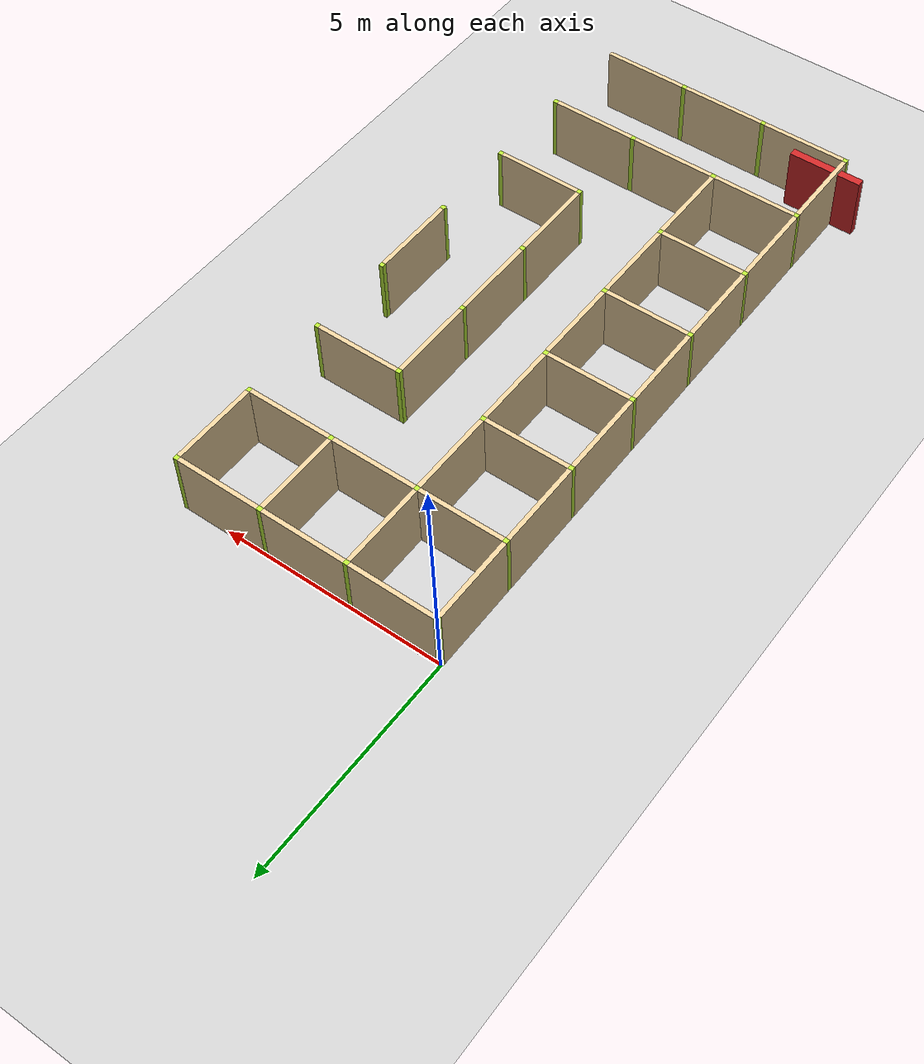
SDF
<sdf version="1.4">
 <world name="maze_world">
  <model name="ground">
   <static>true</static>
   <link name="ground_link">
    <collision name="collision1"><geometry><plane><normal>0 0 1</normal></plane></geometry></collision>
    <visual name="visual1"><geometry><plane><normal>0 0 1</normal><size>100 100</size></plane></geometry></visual>
   </link>
  </model>
  <model name="goal_marker">
   <pose>0.1 -14 0.5 0 0 0</pose>
   <scale>1 1 1</scale>
   <link name="link">
    <pose>0.1 -14 0.471439 0 0 0</pose>
    <velocity>0 0 0 0 -0 0</velocity>
    <acceleration>0 0 0 0 -0 0</acceleration>
    <wrench>0 0 0 0 -0 0</wrench>
   </link>
  </model>
  <model name="Untitled">
   <link name="Wall_0_0_h">
    <collision name="Wall_0_Collision">
     <geometry><box><size>1.9 0.1 1.5</size></box></geometry>
     <pose>0 0 0.75 0 -0 0</pose>
    </collision>
    <visual name="Wall_0_Visual">
     <pose>0 0 0.75 0 -0 0</pose>
     <geometry><box><size>1.9 0.1 1.5</size></box></geometry>
     <material>
      <script><uri>file://media/materials/scripts/gazebo.material</uri><name>Gazebo/Grey</name></script>
      <ambient>0.921569 0.807843 0.615686 1</ambient>
     </material>
     <meta><layer>0</layer></meta>
    </visual>
    <pose>1.0 0 0 0 -0 0</pose>
   </link>
   <link name="Wall_0_0_v">
    <collision name="Wall_0_Collision">
     <geometry><box><size>1.9 0.1 1.5</size></box></geometry>
     <pose>0 0 0.75 0 -0 0</pose>
    </collision>
    <visual name="Wall_0_Visual">
     <pose>0 0 0.75 0 -0 0</pose>
     <geometry><box><size>1.9 0.1 1.5</size></box></geometry>
     <material>
      <script><uri>file://media/materials/scripts/gazebo.material</uri><name>Gazebo/Grey</name></script>
      <ambient>0.921569 0.807843 0.615686 1</ambient>
     </material>
     <meta><layer>0</layer></meta>
    </visual>
    <pose>0 -1.0 0 0 -0 1.5708</pose>
   </link>
   <link name="Joint_0_0">
    <collision name="Wall_2_Collision">
     <geometry><box><size>0.1 0.1 1.5</size></box></geometry>
     <pose>0 0 0.75 0 -0 0</pose>
    </collision>
    <visual name="Wall_2_Visual">
     <pose>0 0 0.75 0 -0 0</pose>
     <geometry><box><size>0.1 0.1 1.5</size></box></geometry>
     <material>
      <script><uri>file://media/materials/scripts/gazebo.material</uri><name>Gazebo/Grey</name></script>
      <ambient>0.721569 0.907843 0.215686 1</ambient>
     </material>
     <meta><layer>0</layer></meta>
    </visual>
   </link>
   <link name="Wall_1_0_h">
    <collision name="Wall_0_Collision">
     <geometry><box><size>1.9 0.1 1.5</size></box></geometry>
     <pose>0 0 0.75 0 -0 0</pose>
    </collision>
    <visual name="Wall_0_Visual">
     <pose>0 0 0.75 0 -0 0</pose>
     <geometry><box><size>1.9 0.1 1.5</size></box></geometry>
     <material>
      <script><uri>file://media/materials/scripts/gazebo.material</uri><name>Gazebo/Grey</name></script>
      <ambient>0.921569 0.807843 0.615686 1</ambient>
     </material>
     <meta><layer>0</layer></meta>
    </visual>
    <pose>3.0 0 0 0 -0 0</pose>
   </link>
   <link name="Wall_1_0_v">
    <collision name="Wall_0_Collision">
     <geometry><box><size>1.9 0.1 1.5</size></box></geometry>
     <pose>0 0 0.75 0 -0 0</pose>
    </collision>
    <visual name="Wall_0_Visual">
     <pose>0 0 0.75 0 -0 0</pose>
     <geometry><box><size>1.9 0.1 1.5</size></box></geometry>
     <material>
      <script><uri>file://media/materials/scripts/gazebo.material</uri><name>Gazebo/Grey</name></script>
      <ambient>0.921569 0.807843 0.615686 1</ambient>
     </material>
     <meta><layer>0</layer></meta>
    </visual>
    <pose>2 -1.0 0 0 -0 1.5708</pose>
   </link>
   <link name="Joint_2_0">
    <collision name="Wall_2_Collision">
     <geometry><box><size>0.1 0.1 1.5</size></box></geometry>
     <pose>0 0 0.75 0 -0 0</pose>
    </collision>
    <visual name="Wall_2_Visual">
     <pose>0 0 0.75 0 -0 0</pose>
     <geometry><box><size>0.1 0.1 1.5</size></box></geometry>
     <material>
      <script><uri>file://media/materials/scripts/gazebo.material</uri><name>Gazebo/Grey</name></script>
      <ambient>0.721569 0.907843 0.215686 1</ambient>
     </material>
     <meta><layer>0</layer></meta>
    </visual>
    <pose>2 0 0 0 -0 0</pose>
   </link>
   <link name="Wall_2_0_h">
    <collision name="Wall_0_Collision">
     <geometry><box><size>1.9 0.1 1.5</size></box></geometry>
     <pose>0 0 0.75 0 -0 0</pose>
    </collision>
    <visual name="Wall_0_Visual">
     <pose>0 0 0.75 0 -0 0</pose>
     <geometry><box><size>1.9 0.1 1.5</size></box></geometry>
     <material>
      <script><uri>file://media/materials/scripts/gazebo.material</uri><name>Gazebo/Grey</name></script>
      <ambient>0.921569 0.807843 0.615686 1</ambient>
     </material>
     <meta><layer>0</layer></meta>
    </visual>
    <pose>5.0 0 0 0 -0 0</pose>
   </link>
   <link name="Wall_2_0_v">
    <collision name="Wall_0_Collision">
     <geometry><box><size>1.9 0.1 1.5</size></box></geometry>
     <pose>0 0 0.75 0 -0 0</pose>
    </collision>
    <visual name="Wall_0_Visual">
     <pose>0 0 0.75 0 -0 0</pose>
     <geometry><box><size>1.9 0.1 1.5</size></box></geometry>
     <material>
      <script><uri>file://media/materials/scripts/gazebo.material</uri><name>Gazebo/Grey</name></script>
      <ambient>0.921569 0.807843 0.615686 1</ambient>
     </material>
     <meta><layer>0</layer></meta>
    </visual>
    <pose>4 -1.0 0 0 -0 1.5708</pose>
   </link>
   <link name="Joint_4_0">
    <collision name="Wall_2_Collision">
     <geometry><box><size>0.1 0.1 1.5</size></box></geometry>
     <pose>0 0 0.75 0 -0 0</pose>
    </collision>
    <visual name="Wall_2_Visual">
     <pose>0 0 0.75 0 -0 0</pose>
     <geometry><box><size>0.1 0.1 1.5</size></box></geometry>
     <material>
      <script><uri>file://media/materials/scripts/gazebo.material</uri><name>Gazebo/Grey</name></script>
      <ambient>0.721569 0.907843 0.215686 1</ambient>
     </material>
     <meta><layer>0</layer></meta>
    </visual>
    <pose>4 0 0 0 -0 0</pose>
   </link>
   <link name="Wall_3_0_v">
    <collision name="Wall_0_Collision">
     <geometry><box><size>1.9 0.1 1.5</size></box></geometry>
     <pose>0 0 0.75 0 -0 0</pose>
    </collision>
    <visual name="Wall_0_Visual">
     <pose>0 0 0.75 0 -0 0</pose>
     <geometry><box><size>1.9 0.1 1.5</size></box></geometry>
     <material>
      <script><uri>file://media/materials/scripts/gazebo.material</uri><name>Gazebo/Grey</name></script>
      <ambient>0.921569 0.807843 0.615686 1</ambient>
     </material>
     <meta><layer>0</layer></meta>
    </visual>
    <pose>6 -1.0 0 0 -0 1.5708</pose>
   </link>
   <link name="Joint_6_0">
    <collision name="Wall_2_Collision">
     <geometry><box><size>0.1 0.1 1.5</size></box></geometry>
     <pose>0 0 0.75 0 -0 0</pose>
    </collision>
    <visual name="Wall_2_Visual">
     <pose>0 0 0.75 0 -0 0</pose>
     <geometry><box><size>0.1 0.1 1.5</size></box></geometry>
     <material>
      <script><uri>file://media/materials/scripts/gazebo.material</uri><name>Gazebo/Grey</name></script>
      <ambient>0.721569 0.907843 0.215686 1</ambient>
     </material>
     <meta><layer>0</layer></meta>
    </visual>
    <pose>6 0 0 0 -0 0</pose>
   </link>
   <link name="Wall_0_1_h">
    <collision name="Wall_0_Collision">
     <geometry><box><size>1.9 0.1 1.5</size></box></geometry>
     <pose>0 0 0.75 0 -0 0</pose>
    </collision>
    <visual name="Wall_0_Visual">
     <pose>0 0 0.75 0 -0 0</pose>
     <geometry><box><size>1.9 0.1 1.5</size></box></geometry>
     <material>
      <script><uri>file://media/materials/scripts/gazebo.material</uri><name>Gazebo/Grey</name></script>
      <ambient>0.921569 0.807843 0.615686 1</ambient>
     </material>
     <meta><layer>0</layer></meta>
    </visual>
    <pose>1.0 -2 0 0 -0 0</pose>
   </link>
   <link name="Wall_0_1_v">
    <collision name="Wall_0_Collision">
     <geometry><box><size>1.9 0.1 1.5</size></box></geometry>
     <pose>0 0 0.75 0 -0 0</pose>
    </collision>
    <visual name="Wall_0_Visual">
     <pose>0 0 0.75 0 -0 0</pose>
     <geometry><box><size>1.9 0.1 1.5</size></box></geometry>
     <material>
      <script><uri>file://media/materials/scripts/gazebo.material</uri><name>Gazebo/Grey</name></script>
      <ambient>0.921569 0.807843 0.615686 1</ambient>
     </material>
     <meta><layer>0</layer></meta>
    </visual>
    <pose>0 -3.0 0 0 -0 1.5708</pose>
   </link>
   <link name="Joint_0_-2">
    <collision name="Wall_2_Collision">
     <geometry><box><size>0.1 0.1 1.5</size></box></geometry>
     <pose>0 0 0.75 0 -0 0</pose>
    </collision>
    <visual name="Wall_2_Visual">
     <pose>0 0 0.75 0 -0 0</pose>
     <geometry><box><size>0.1 0.1 1.5</size></box></geometry>
     <material>
      <script><uri>file://media/materials/scripts/gazebo.material</uri><name>Gazebo/Grey</name></script>
      <ambient>0.721569 0.907843 0.215686 1</ambient>
     </material>
     <meta><layer>0</layer></meta>
    </visual>
    <pose>0 -2 0 0 -0 0</pose>
   </link>
   <link name="Wall_1_1_h">
    <collision name="Wall_0_Collision">
     <geometry><box><size>1.9 0.1 1.5</size></box></geometry>
     <pose>0 0 0.75 0 -0 0</pose>
    </collision>
    <visual name="Wall_0_Visual">
     <pose>0 0 0.75 0 -0 0</pose>
     <geometry><box><size>1.9 0.1 1.5</size></box></geometry>
     <material>
      <script><uri>file://media/materials/scripts/gazebo.material</uri><name>Gazebo/Grey</name></script>
      <ambient>0.921569 0.807843 0.615686 1</ambient>
     </material>
     <meta><layer>0</layer></meta>
    </visual>
    <pose>3.0 -2 0 0 -0 0</pose>
   </link>
   <link name="Wall_1_1_v">
    <collision name="Wall_0_Collision">
     <geometry><box><size>1.9 0.1 1.5</size></box></geometry>
     <pose>0 0 0.75 0 -0 0</pose>
    </collision>
    <visual name="Wall_0_Visual">
     <pose>0 0 0.75 0 -0 0</pose>
     <geometry><box><size>1.9 0.1 1.5</size></box></geometry>
     <material>
      <script><uri>file://media/materials/scripts/gazebo.material</uri><name>Gazebo/Grey</name></script>
      <ambient>0.921569 0.807843 0.615686 1</ambient>
     </material>
     <meta><layer>0</layer></meta>
    </visual>
    <pose>2 -3.0 0 0 -0 1.5708</pose>
   </link>
   <link name="Joint_2_-2">
    <collision name="Wall_2_Collision">
     <geometry><box><size>0.1 0.1 1.5</size></box></geometry>
     <pose>0 0 0.75 0 -0 0</pose>
    </collision>
    <visual name="Wall_2_Visual">
     <pose>0 0 0.75 0 -0 0</pose>
     <geometry><box><size>0.1 0.1 1.5</size></box></geometry>
     <material>
      <script><uri>file://media/materials/scripts/gazebo.material</uri><name>Gazebo/Grey</name></script>
      <ambient>0.721569 0.907843 0.215686 1</ambient>
     </material>
     <meta><layer>0</layer></meta>
    </visual>
    <pose>2 -2 0 0 -0 0</pose>
   </link>
   <link name="Wall_2_1_h">
    <collision name="Wall_0_Collision">
     <geometry><box><size>1.9 0.1 1.5</size></box></geometry>
     <pose>0 0 0.75 0 -0 0</pose>
    </collision>
    <visual name="Wall_0_Visual">
     <pose>0 0 0.75 0 -0 0</pose>
     <geometry><box><size>1.9 0.1 1.5</size></box></geometry>
     <material>
      <script><uri>file://media/materials/scripts/gazebo.material</uri><name>Gazebo/Grey</name></script>
      <ambient>0.921569 0.807843 0.615686 1</ambient>
     </material>
     <meta><layer>0</layer></meta>
    </visual>
    <pose>5.0 -2 0 0 -0 0</pose>
   </link>
   <link name="Joint_4_-2">
    <collision name="Wall_2_Collision">
     <geometry><box><size>0.1 0.1 1.5</size></box></geometry>
     <pose>0 0 0.75 0 -0 0</pose>
    </collision>
    <visual name="Wall_2_Visual">
     <pose>0 0 0.75 0 -0 0</pose>
     <geometry><box><size>0.1 0.1 1.5</size></box></geometry>
     <material>
      <script><uri>file://media/materials/scripts/gazebo.material</uri><name>Gazebo/Grey</name></script>
      <ambient>0.721569 0.907843 0.215686 1</ambient>
     </material>
     <meta><layer>0</layer></meta>
    </visual>
    <pose>4 -2 0 0 -0 0</pose>
   </link>
   <link name="Joint_6_-2">
    <collision name="Wall_2_Collision">
     <geometry><box><size>0.1 0.1 1.5</size></box></geometry>
     <pose>0 0 0.75 0 -0 0</pose>
    </collision>
    <visual name="Wall_2_Visual">
     <pose>0 0 0.75 0 -0 0</pose>
     <geometry><box><size>0.1 0.1 1.5</size></box></geometry>
     <material>
      <script><uri>file://media/materials/scripts/gazebo.material</uri><name>Gazebo/Grey</name></script>
      <ambient>0.721569 0.907843 0.215686 1</ambient>
     </material>
     <meta><layer>0</layer></meta>
    </visual>
    <pose>6 -2 0 0 -0 0</pose>
   </link>
   <link name="Wall_0_2_h">
    <collision name="Wall_0_Collision">
     <geometry><box><size>1.9 0.1 1.5</size></box></geometry>
     <pose>0 0 0.75 0 -0 0</pose>
    </collision>
    <visual name="Wall_0_Visual">
     <pose>0 0 0.75 0 -0 0</pose>
     <geometry><box><size>1.9 0.1 1.5</size></box></geometry>
     <material>
      <script><uri>file://media/materials/scripts/gazebo.material</uri><name>Gazebo/Grey</name></script>
      <ambient>0.921569 0.807843 0.615686 1</ambient>
     </material>
     <meta><layer>0</layer></meta>
    </visual>
    <pose>1.0 -4 0 0 -0 0</pose>
   </link>
   <link name="Wall_0_2_v">
    <collision name="Wall_0_Collision">
     <geometry><box><size>1.9 0.1 1.5</size></box></geometry>
     <pose>0 0 0.75 0 -0 0</pose>
    </collision>
    <visual name="Wall_0_Visual">
     <pose>0 0 0.75 0 -0 0</pose>
     <geometry><box><size>1.9 0.1 1.5</size></box></geometry>
     <material>
      <script><uri>file://media/materials/scripts/gazebo.material</uri><name>Gazebo/Grey</name></script>
      <ambient>0.921569 0.807843 0.615686 1</ambient>
     </material>
     <meta><layer>0</layer></meta>
    </visual>
    <pose>0 -5.0 0 0 -0 1.5708</pose>
   </link>
   <link name="Joint_0_-4">
    <collision name="Wall_2_Collision">
     <geometry><box><size>0.1 0.1 1.5</size></box></geometry>
     <pose>0 0 0.75 0 -0 0</pose>
    </collision>
    <visual name="Wall_2_Visual">
     <pose>0 0 0.75 0 -0 0</pose>
     <geometry><box><size>0.1 0.1 1.5</size></box></geometry>
     <material>
      <script><uri>file://media/materials/scripts/gazebo.material</uri><name>Gazebo/Grey</name></script>
      <ambient>0.721569 0.907843 0.215686 1</ambient>
     </material>
     <meta><layer>0</layer></meta>
    </visual>
    <pose>0 -4 0 0 -0 0</pose>
   </link>
   <link name="Wall_1_2_v">
    <collision name="Wall_0_Collision">
     <geometry><box><size>1.9 0.1 1.5</size></box></geometry>
     <pose>0 0 0.75 0 -0 0</pose>
    </collision>
    <visual name="Wall_0_Visual">
     <pose>0 0 0.75 0 -0 0</pose>
     <geometry><box><size>1.9 0.1 1.5</size></box></geometry>
     <material>
      <script><uri>file://media/materials/scripts/gazebo.material</uri><name>Gazebo/Grey</name></script>
      <ambient>0.921569 0.807843 0.615686 1</ambient>
     </material>
     <meta><layer>0</layer></meta>
    </visual>
    <pose>2 -5.0 0 0 -0 1.5708</pose>
   </link>
   <link name="Joint_2_-4">
    <collision name="Wall_2_Collision">
     <geometry><box><size>0.1 0.1 1.5</size></box></geometry>
     <pose>0 0 0.75 0 -0 0</pose>
    </collision>
    <visual name="Wall_2_Visual">
     <pose>0 0 0.75 0 -0 0</pose>
     <geometry><box><size>0.1 0.1 1.5</size></box></geometry>
     <material>
      <script><uri>file://media/materials/scripts/gazebo.material</uri><name>Gazebo/Grey</name></script>
      <ambient>0.721569 0.907843 0.215686 1</ambient>
     </material>
     <meta><layer>0</layer></meta>
    </visual>
    <pose>2 -4 0 0 -0 0</pose>
   </link>
   <link name="Wall_2_2_h">
    <collision name="Wall_0_Collision">
     <geometry><box><size>1.9 0.1 1.5</size></box></geometry>
     <pose>0 0 0.75 0 -0 0</pose>
    </collision>
    <visual name="Wall_0_Visual">
     <pose>0 0 0.75 0 -0 0</pose>
     <geometry><box><size>1.9 0.1 1.5</size></box></geometry>
     <material>
      <script><uri>file://media/materials/scripts/gazebo.material</uri><name>Gazebo/Grey</name></script>
      <ambient>0.921569 0.807843 0.615686 1</ambient>
     </material>
     <meta><layer>0</layer></meta>
    </visual>
    <pose>5.0 -4 0 0 -0 0</pose>
   </link>
   <link name="Wall_2_2_v">
    <collision name="Wall_0_Collision">
     <geometry><box><size>1.9 0.1 1.5</size></box></geometry>
     <pose>0 0 0.75 0 -0 0</pose>
    </collision>
    <visual name="Wall_0_Visual">
     <pose>0 0 0.75 0 -0 0</pose>
     <geometry><box><size>1.9 0.1 1.5</size></box></geometry>
     <material>
      <script><uri>file://media/materials/scripts/gazebo.material</uri><name>Gazebo/Grey</name></script>
      <ambient>0.921569 0.807843 0.615686 1</ambient>
     </material>
     <meta><layer>0</layer></meta>
    </visual>
    <pose>4 -5.0 0 0 -0 1.5708</pose>
   </link>
   <link name="Joint_4_-4">
    <collision name="Wall_2_Collision">
     <geometry><box><size>0.1 0.1 1.5</size></box></geometry>
     <pose>0 0 0.75 0 -0 0</pose>
    </collision>
    <visual name="Wall_2_Visual">
     <pose>0 0 0.75 0 -0 0</pose>
     <geometry><box><size>0.1 0.1 1.5</size></box></geometry>
     <material>
      <script><uri>file://media/materials/scripts/gazebo.material</uri><name>Gazebo/Grey</name></script>
      <ambient>0.721569 0.907843 0.215686 1</ambient>
     </material>
     <meta><layer>0</layer></meta>
    </visual>
    <pose>4 -4 0 0 -0 0</pose>
   </link>
   <link name="Joint_6_-4">
    <collision name="Wall_2_Collision">
     <geometry><box><size>0.1 0.1 1.5</size></box></geometry>
     <pose>0 0 0.75 0 -0 0</pose>
    </collision>
    <visual name="Wall_2_Visual">
     <pose>0 0 0.75 0 -0 0</pose>
     <geometry><box><size>0.1 0.1 1.5</size></box></geometry>
     <material>
      <script><uri>file://media/materials/scripts/gazebo.material</uri><name>Gazebo/Grey</name></script>
      <ambient>0.721569 0.907843 0.215686 1</ambient>
     </material>
     <meta><layer>0</layer></meta>
    </visual>
    <pose>6 -4 0 0 -0 0</pose>
   </link>
   <link name="Wall_0_3_h">
    <collision name="Wall_0_Collision">
     <geometry><box><size>1.9 0.1 1.5</size></box></geometry>
     <pose>0 0 0.75 0 -0 0</pose>
    </collision>
    <visual name="Wall_0_Visual">
     <pose>0 0 0.75 0 -0 0</pose>
     <geometry><box><size>1.9 0.1 1.5</size></box></geometry>
     <material>
      <script><uri>file://media/materials/scripts/gazebo.material</uri><name>Gazebo/Grey</name></script>
      <ambient>0.921569 0.807843 0.615686 1</ambient>
     </material>
     <meta><layer>0</layer></meta>
    </visual>
    <pose>1.0 -6 0 0 -0 0</pose>
   </link>
   <link name="Wall_0_3_v">
    <collision name="Wall_0_Collision">
     <geometry><box><size>1.9 0.1 1.5</size></box></geometry>
     <pose>0 0 0.75 0 -0 0</pose>
    </collision>
    <visual name="Wall_0_Visual">
     <pose>0 0 0.75 0 -0 0</pose>
     <geometry><box><size>1.9 0.1 1.5</size></box></geometry>
     <material>
      <script><uri>file://media/materials/scripts/gazebo.material</uri><name>Gazebo/Grey</name></script>
      <ambient>0.921569 0.807843 0.615686 1</ambient>
     </material>
     <meta><layer>0</layer></meta>
    </visual>
    <pose>0 -7.0 0 0 -0 1.5708</pose>
   </link>
   <link name="Joint_0_-6">
    <collision name="Wall_2_Collision">
     <geometry><box><size>0.1 0.1 1.5</size></box></geometry>
     <pose>0 0 0.75 0 -0 0</pose>
    </collision>
    <visual name="Wall_2_Visual">
     <pose>0 0 0.75 0 -0 0</pose>
     <geometry><box><size>0.1 0.1 1.5</size></box></geometry>
     <material>
      <script><uri>file://media/materials/scripts/gazebo.material</uri><name>Gazebo/Grey</name></script>
      <ambient>0.721569 0.907843 0.215686 1</ambient>
     </material>
     <meta><layer>0</layer></meta>
    </visual>
    <pose>0 -6 0 0 -0 0</pose>
   </link>
   <link name="Wall_1_3_v">
    <collision name="Wall_0_Collision">
     <geometry><box><size>1.9 0.1 1.5</size></box></geometry>
     <pose>0 0 0.75 0 -0 0</pose>
    </collision>
    <visual name="Wall_0_Visual">
     <pose>0 0 0.75 0 -0 0</pose>
     <geometry><box><size>1.9 0.1 1.5</size></box></geometry>
     <material>
      <script><uri>file://media/materials/scripts/gazebo.material</uri><name>Gazebo/Grey</name></script>
      <ambient>0.921569 0.807843 0.615686 1</ambient>
     </material>
     <meta><layer>0</layer></meta>
    </visual>
    <pose>2 -7.0 0 0 -0 1.5708</pose>
   </link>
   <link name="Joint_2_-6">
    <collision name="Wall_2_Collision">
     <geometry><box><size>0.1 0.1 1.5</size></box></geometry>
     <pose>0 0 0.75 0 -0 0</pose>
    </collision>
    <visual name="Wall_2_Visual">
     <pose>0 0 0.75 0 -0 0</pose>
     <geometry><box><size>0.1 0.1 1.5</size></box></geometry>
     <material>
      <script><uri>file://media/materials/scripts/gazebo.material</uri><name>Gazebo/Grey</name></script>
      <ambient>0.721569 0.907843 0.215686 1</ambient>
     </material>
     <meta><layer>0</layer></meta>
    </visual>
    <pose>2 -6 0 0 -0 0</pose>
   </link>
   <link name="Wall_2_3_v">
    <collision name="Wall_0_Collision">
     <geometry><box><size>1.9 0.1 1.5</size></box></geometry>
     <pose>0 0 0.75 0 -0 0</pose>
    </collision>
    <visual name="Wall_0_Visual">
     <pose>0 0 0.75 0 -0 0</pose>
     <geometry><box><size>1.9 0.1 1.5</size></box></geometry>
     <material>
      <script><uri>file://media/materials/scripts/gazebo.material</uri><name>Gazebo/Grey</name></script>
      <ambient>0.921569 0.807843 0.615686 1</ambient>
     </material>
     <meta><layer>0</layer></meta>
    </visual>
    <pose>4 -7.0 0 0 -0 1.5708</pose>
   </link>
   <link name="Joint_4_-6">
    <collision name="Wall_2_Collision">
     <geometry><box><size>0.1 0.1 1.5</size></box></geometry>
     <pose>0 0 0.75 0 -0 0</pose>
    </collision>
    <visual name="Wall_2_Visual">
     <pose>0 0 0.75 0 -0 0</pose>
     <geometry><box><size>0.1 0.1 1.5</size></box></geometry>
     <material>
      <script><uri>file://media/materials/scripts/gazebo.material</uri><name>Gazebo/Grey</name></script>
      <ambient>0.721569 0.907843 0.215686 1</ambient>
     </material>
     <meta><layer>0</layer></meta>
    </visual>
    <pose>4 -6 0 0 -0 0</pose>
   </link>
   <link name="Wall_3_3_v">
    <collision name="Wall_0_Collision">
     <geometry><box><size>1.9 0.1 1.5</size></box></geometry>
     <pose>0 0 0.75 0 -0 0</pose>
    </collision>
    <visual name="Wall_0_Visual">
     <pose>0 0 0.75 0 -0 0</pose>
     <geometry><box><size>1.9 0.1 1.5</size></box></geometry>
     <material>
      <script><uri>file://media/materials/scripts/gazebo.material</uri><name>Gazebo/Grey</name></script>
      <ambient>0.921569 0.807843 0.615686 1</ambient>
     </material>
     <meta><layer>0</layer></meta>
    </visual>
    <pose>6 -7.0 0 0 -0 1.5708</pose>
   </link>
   <link name="Joint_6_-6">
    <collision name="Wall_2_Collision">
     <geometry><box><size>0.1 0.1 1.5</size></box></geometry>
     <pose>0 0 0.75 0 -0 0</pose>
    </collision>
    <visual name="Wall_2_Visual">
     <pose>0 0 0.75 0 -0 0</pose>
     <geometry><box><size>0.1 0.1 1.5</size></box></geometry>
     <material>
      <script><uri>file://media/materials/scripts/gazebo.material</uri><name>Gazebo/Grey</name></script>
      <ambient>0.721569 0.907843 0.215686 1</ambient>
     </material>
     <meta><layer>0</layer></meta>
    </visual>
    <pose>6 -6 0 0 -0 0</pose>
   </link>
   <link name="Wall_0_4_h">
    <collision name="Wall_0_Collision">
     <geometry><box><size>1.9 0.1 1.5</size></box></geometry>
     <pose>0 0 0.75 0 -0 0</pose>
    </collision>
    <visual name="Wall_0_Visual">
     <pose>0 0 0.75 0 -0 0</pose>
     <geometry><box><size>1.9 0.1 1.5</size></box></geometry>
     <material>
      <script><uri>file://media/materials/scripts/gazebo.material</uri><name>Gazebo/Grey</name></script>
      <ambient>0.921569 0.807843 0.615686 1</ambient>
     </material>
     <meta><layer>0</layer></meta>
    </visual>
    <pose>1.0 -8 0 0 -0 0</pose>
   </link>
   <link name="Wall_0_4_v">
    <collision name="Wall_0_Collision">
     <geometry><box><size>1.9 0.1 1.5</size></box></geometry>
     <pose>0 0 0.75 0 -0 0</pose>
    </collision>
    <visual name="Wall_0_Visual">
     <pose>0 0 0.75 0 -0 0</pose>
     <geometry><box><size>1.9 0.1 1.5</size></box></geometry>
     <material>
      <script><uri>file://media/materials/scripts/gazebo.material</uri><name>Gazebo/Grey</name></script>
      <ambient>0.921569 0.807843 0.615686 1</ambient>
     </material>
     <meta><layer>0</layer></meta>
    </visual>
    <pose>0 -9.0 0 0 -0 1.5708</pose>
   </link>
   <link name="Joint_0_-8">
    <collision name="Wall_2_Collision">
     <geometry><box><size>0.1 0.1 1.5</size></box></geometry>
     <pose>0 0 0.75 0 -0 0</pose>
    </collision>
    <visual name="Wall_2_Visual">
     <pose>0 0 0.75 0 -0 0</pose>
     <geometry><box><size>0.1 0.1 1.5</size></box></geometry>
     <material>
      <script><uri>file://media/materials/scripts/gazebo.material</uri><name>Gazebo/Grey</name></script>
      <ambient>0.721569 0.907843 0.215686 1</ambient>
     </material>
     <meta><layer>0</layer></meta>
    </visual>
    <pose>0 -8 0 0 -0 0</pose>
   </link>
   <link name="Wall_1_4_v">
    <collision name="Wall_0_Collision">
     <geometry><box><size>1.9 0.1 1.5</size></box></geometry>
     <pose>0 0 0.75 0 -0 0</pose>
    </collision>
    <visual name="Wall_0_Visual">
     <pose>0 0 0.75 0 -0 0</pose>
     <geometry><box><size>1.9 0.1 1.5</size></box></geometry>
     <material>
      <script><uri>file://media/materials/scripts/gazebo.material</uri><name>Gazebo/Grey</name></script>
      <ambient>0.921569 0.807843 0.615686 1</ambient>
     </material>
     <meta><layer>0</layer></meta>
    </visual>
    <pose>2 -9.0 0 0 -0 1.5708</pose>
   </link>
   <link name="Joint_2_-8">
    <collision name="Wall_2_Collision">
     <geometry><box><size>0.1 0.1 1.5</size></box></geometry>
     <pose>0 0 0.75 0 -0 0</pose>
    </collision>
    <visual name="Wall_2_Visual">
     <pose>0 0 0.75 0 -0 0</pose>
     <geometry><box><size>0.1 0.1 1.5</size></box></geometry>
     <material>
      <script><uri>file://media/materials/scripts/gazebo.material</uri><name>Gazebo/Grey</name></script>
      <ambient>0.721569 0.907843 0.215686 1</ambient>
     </material>
     <meta><layer>0</layer></meta>
    </visual>
    <pose>2 -8 0 0 -0 0</pose>
   </link>
   <link name="Wall_2_4_v">
    <collision name="Wall_0_Collision">
     <geometry><box><size>1.9 0.1 1.5</size></box></geometry>
     <pose>0 0 0.75 0 -0 0</pose>
    </collision>
    <visual name="Wall_0_Visual">
     <pose>0 0 0.75 0 -0 0</pose>
     <geometry><box><size>1.9 0.1 1.5</size></box></geometry>
     <material>
      <script><uri>file://media/materials/scripts/gazebo.material</uri><name>Gazebo/Grey</name></script>
      <ambient>0.921569 0.807843 0.615686 1</ambient>
     </material>
     <meta><layer>0</layer></meta>
    </visual>
    <pose>4 -9.0 0 0 -0 1.5708</pose>
   </link>
   <link name="Joint_4_-8">
    <collision name="Wall_2_Collision">
     <geometry><box><size>0.1 0.1 1.5</size></box></geometry>
     <pose>0 0 0.75 0 -0 0</pose>
    </collision>
    <visual name="Wall_2_Visual">
     <pose>0 0 0.75 0 -0 0</pose>
     <geometry><box><size>0.1 0.1 1.5</size></box></geometry>
     <material>
      <script><uri>file://media/materials/scripts/gazebo.material</uri><name>Gazebo/Grey</name></script>
      <ambient>0.721569 0.907843 0.215686 1</ambient>
     </material>
     <meta><layer>0</layer></meta>
    </visual>
    <pose>4 -8 0 0 -0 0</pose>
   </link>
   <link name="Joint_6_-8">
    <collision name="Wall_2_Collision">
     <geometry><box><size>0.1 0.1 1.5</size></box></geometry>
     <pose>0 0 0.75 0 -0 0</pose>
    </collision>
    <visual name="Wall_2_Visual">
     <pose>0 0 0.75 0 -0 0</pose>
     <geometry><box><size>0.1 0.1 1.5</size></box></geometry>
     <material>
      <script><uri>file://media/materials/scripts/gazebo.material</uri><name>Gazebo/Grey</name></script>
      <ambient>0.721569 0.907843 0.215686 1</ambient>
     </material>
     <meta><layer>0</layer></meta>
    </visual>
    <pose>6 -8 0 0 -0 0</pose>
   </link>
   <link name="Wall_0_5_h">
    <collision name="Wall_0_Collision">
     <geometry><box><size>1.9 0.1 1.5</size></box></geometry>
     <pose>0 0 0.75 0 -0 0</pose>
    </collision>
    <visual name="Wall_0_Visual">
     <pose>0 0 0.75 0 -0 0</pose>
     <geometry><box><size>1.9 0.1 1.5</size></box></geometry>
     <material>
      <script><uri>file://media/materials/scripts/gazebo.material</uri><name>Gazebo/Grey</name></script>
      <ambient>0.921569 0.807843 0.615686 1</ambient>
     </material>
     <meta><layer>0</layer></meta>
    </visual>
    <pose>1.0 -10 0 0 -0 0</pose>
   </link>
   <link name="Wall_0_5_v">
    <collision name="Wall_0_Collision">
     <geometry><box><size>1.9 0.1 1.5</size></box></geometry>
     <pose>0 0 0.75 0 -0 0</pose>
    </collision>
    <visual name="Wall_0_Visual">
     <pose>0 0 0.75 0 -0 0</pose>
     <geometry><box><size>1.9 0.1 1.5</size></box></geometry>
     <material>
      <script><uri>file://media/materials/scripts/gazebo.material</uri><name>Gazebo/Grey</name></script>
      <ambient>0.921569 0.807843 0.615686 1</ambient>
     </material>
     <meta><layer>0</layer></meta>
    </visual>
    <pose>0 -11.0 0 0 -0 1.5708</pose>
   </link>
   <link name="Joint_0_-10">
    <collision name="Wall_2_Collision">
     <geometry><box><size>0.1 0.1 1.5</size></box></geometry>
     <pose>0 0 0.75 0 -0 0</pose>
    </collision>
    <visual name="Wall_2_Visual">
     <pose>0 0 0.75 0 -0 0</pose>
     <geometry><box><size>0.1 0.1 1.5</size></box></geometry>
     <material>
      <script><uri>file://media/materials/scripts/gazebo.material</uri><name>Gazebo/Grey</name></script>
      <ambient>0.721569 0.907843 0.215686 1</ambient>
     </material>
     <meta><layer>0</layer></meta>
    </visual>
    <pose>0 -10 0 0 -0 0</pose>
   </link>
   <link name="Wall_1_5_v">
    <collision name="Wall_0_Collision">
     <geometry><box><size>1.9 0.1 1.5</size></box></geometry>
     <pose>0 0 0.75 0 -0 0</pose>
    </collision>
    <visual name="Wall_0_Visual">
     <pose>0 0 0.75 0 -0 0</pose>
     <geometry><box><size>1.9 0.1 1.5</size></box></geometry>
     <material>
      <script><uri>file://media/materials/scripts/gazebo.material</uri><name>Gazebo/Grey</name></script>
      <ambient>0.921569 0.807843 0.615686 1</ambient>
     </material>
     <meta><layer>0</layer></meta>
    </visual>
    <pose>2 -11.0 0 0 -0 1.5708</pose>
   </link>
   <link name="Joint_2_-10">
    <collision name="Wall_2_Collision">
     <geometry><box><size>0.1 0.1 1.5</size></box></geometry>
     <pose>0 0 0.75 0 -0 0</pose>
    </collision>
    <visual name="Wall_2_Visual">
     <pose>0 0 0.75 0 -0 0</pose>
     <geometry><box><size>0.1 0.1 1.5</size></box></geometry>
     <material>
      <script><uri>file://media/materials/scripts/gazebo.material</uri><name>Gazebo/Grey</name></script>
      <ambient>0.721569 0.907843 0.215686 1</ambient>
     </material>
     <meta><layer>0</layer></meta>
    </visual>
    <pose>2 -10 0 0 -0 0</pose>
   </link>
   <link name="Wall_2_5_h">
    <collision name="Wall_0_Collision">
     <geometry><box><size>1.9 0.1 1.5</size></box></geometry>
     <pose>0 0 0.75 0 -0 0</pose>
    </collision>
    <visual name="Wall_0_Visual">
     <pose>0 0 0.75 0 -0 0</pose>
     <geometry><box><size>1.9 0.1 1.5</size></box></geometry>
     <material>
      <script><uri>file://media/materials/scripts/gazebo.material</uri><name>Gazebo/Grey</name></script>
      <ambient>0.921569 0.807843 0.615686 1</ambient>
     </material>
     <meta><layer>0</layer></meta>
    </visual>
    <pose>5.0 -10 0 0 -0 0</pose>
   </link>
   <link name="Joint_4_-10">
    <collision name="Wall_2_Collision">
     <geometry><box><size>0.1 0.1 1.5</size></box></geometry>
     <pose>0 0 0.75 0 -0 0</pose>
    </collision>
    <visual name="Wall_2_Visual">
     <pose>0 0 0.75 0 -0 0</pose>
     <geometry><box><size>0.1 0.1 1.5</size></box></geometry>
     <material>
      <script><uri>file://media/materials/scripts/gazebo.material</uri><name>Gazebo/Grey</name></script>
      <ambient>0.721569 0.907843 0.215686 1</ambient>
     </material>
     <meta><layer>0</layer></meta>
    </visual>
    <pose>4 -10 0 0 -0 0</pose>
   </link>
   <link name="Joint_6_-10">
    <collision name="Wall_2_Collision">
     <geometry><box><size>0.1 0.1 1.5</size></box></geometry>
     <pose>0 0 0.75 0 -0 0</pose>
    </collision>
    <visual name="Wall_2_Visual">
     <pose>0 0 0.75 0 -0 0</pose>
     <geometry><box><size>0.1 0.1 1.5</size></box></geometry>
     <material>
      <script><uri>file://media/materials/scripts/gazebo.material</uri><name>Gazebo/Grey</name></script>
      <ambient>0.721569 0.907843 0.215686 1</ambient>
     </material>
     <meta><layer>0</layer></meta>
    </visual>
    <pose>6 -10 0 0 -0 0</pose>
   </link>
   <link name="Wall_0_6_h">
    <collision name="Wall_0_Collision">
     <geometry><box><size>1.9 0.1 1.5</size></box></geometry>
     <pose>0 0 0.75 0 -0 0</pose>
    </collision>
    <visual name="Wall_0_Visual">
     <pose>0 0 0.75 0 -0 0</pose>
     <geometry><box><size>1.9 0.1 1.5</size></box></geometry>
     <material>
      <script><uri>file://media/materials/scripts/gazebo.material</uri><name>Gazebo/Grey</name></script>
      <ambient>0.921569 0.807843 0.615686 1</ambient>
     </material>
     <meta><layer>0</layer></meta>
    </visual>
    <pose>1.0 -12 0 0 -0 0</pose>
   </link>
   <link name="Wall_0_6_v">
    <collision name="Wall_0_Collision">
     <geometry><box><size>1.9 0.1 1.5</size></box></geometry>
     <pose>0 0 0.75 0 -0 0</pose>
    </collision>
    <visual name="Wall_0_Visual">
     <pose>0 0 0.75 0 -0 0</pose>
     <geometry><box><size>1.9 0.1 1.5</size></box></geometry>
     <material>
      <script><uri>file://media/materials/scripts/gazebo.material</uri><name>Gazebo/Grey</name></script>
      <ambient>0.921569 0.807843 0.615686 1</ambient>
     </material>
     <meta><layer>0</layer></meta>
    </visual>
    <pose>0 -13.0 0 0 -0 1.5708</pose>
   </link>
   <link name="Joint_0_-12">
    <collision name="Wall_2_Collision">
     <geometry><box><size>0.1 0.1 1.5</size></box></geometry>
     <pose>0 0 0.75 0 -0 0</pose>
    </collision>
    <visual name="Wall_2_Visual">
     <pose>0 0 0.75 0 -0 0</pose>
     <geometry><box><size>0.1 0.1 1.5</size></box></geometry>
     <material>
      <script><uri>file://media/materials/scripts/gazebo.material</uri><name>Gazebo/Grey</name></script>
      <ambient>0.721569 0.907843 0.215686 1</ambient>
     </material>
     <meta><layer>0</layer></meta>
    </visual>
    <pose>0 -12 0 0 -0 0</pose>
   </link>
   <link name="Wall_0_7_h">
    <collision name="Wall_0_Collision">
     <geometry><box><size>1.9 0.1 1.5</size></box></geometry>
     <pose>0 0 0.75 0 -0 0</pose>
    </collision>
    <visual name="Wall_0_Visual">
     <pose>0 0 0.75 0 -0 0</pose>
     <geometry><box><size>1.9 0.1 1.5</size></box></geometry>
     <material>
      <script><uri>file://media/materials/scripts/gazebo.material</uri><name>Gazebo/Grey</name></script>
      <ambient>0.921569 0.807843 0.615686 1</ambient>
     </material>
     <meta><layer>0</layer></meta>
    </visual>
    <pose>1.0 -14 0 0 -0 0</pose>
   </link>
   <link name="Joint_0_-14">
    <collision name="Wall_2_Collision">
     <geometry><box><size>0.1 0.1 1.5</size></box></geometry>
     <pose>0 0 0.75 0 -0 0</pose>
    </collision>
    <visual name="Wall_2_Visual">
     <pose>0 0 0.75 0 -0 0</pose>
     <geometry><box><size>0.1 0.1 1.5</size></box></geometry>
     <material>
      <script><uri>file://media/materials/scripts/gazebo.material</uri><name>Gazebo/Grey</name></script>
      <ambient>0.721569 0.907843 0.215686 1</ambient>
     </material>
     <meta><layer>0</layer></meta>
    </visual>
    <pose>0 -14 0 0 -0 0</pose>
   </link>
   <link name="Wall_1_6_h">
    <collision name="Wall_0_Collision">
     <geometry><box><size>1.9 0.1 1.5</size></box></geometry>
     <pose>0 0 0.75 0 -0 0</pose>
    </collision>
    <visual name="Wall_0_Visual">
     <pose>0 0 0.75 0 -0 0</pose>
     <geometry><box><size>1.9 0.1 1.5</size></box></geometry>
     <material>
      <script><uri>file://media/materials/scripts/gazebo.material</uri><name>Gazebo/Grey</name></script>
      <ambient>0.921569 0.807843 0.615686 1</ambient>
     </material>
     <meta><layer>0</layer></meta>
    </visual>
    <pose>3.0 -12 0 0 -0 0</pose>
   </link>
   <link name="Joint_2_-12">
    <collision name="Wall_2_Collision">
     <geometry><box><size>0.1 0.1 1.5</size></box></geometry>
     <pose>0 0 0.75 0 -0 0</pose>
    </collision>
    <visual name="Wall_2_Visual">
     <pose>0 0 0.75 0 -0 0</pose>
     <geometry><box><size>0.1 0.1 1.5</size></box></geometry>
     <material>
      <script><uri>file://media/materials/scripts/gazebo.material</uri><name>Gazebo/Grey</name></script>
      <ambient>0.721569 0.907843 0.215686 1</ambient>
     </material>
     <meta><layer>0</layer></meta>
    </visual>
    <pose>2 -12 0 0 -0 0</pose>
   </link>
   <link name="Wall_1_7_h">
    <collision name="Wall_0_Collision">
     <geometry><box><size>1.9 0.1 1.5</size></box></geometry>
     <pose>0 0 0.75 0 -0 0</pose>
    </collision>
    <visual name="Wall_0_Visual">
     <pose>0 0 0.75 0 -0 0</pose>
     <geometry><box><size>1.9 0.1 1.5</size></box></geometry>
     <material>
      <script><uri>file://media/materials/scripts/gazebo.material</uri><name>Gazebo/Grey</name></script>
      <ambient>0.921569 0.807843 0.615686 1</ambient>
     </material>
     <meta><layer>0</layer></meta>
    </visual>
    <pose>3.0 -14 0 0 -0 0</pose>
   </link>
   <link name="Joint_2_-14">
    <collision name="Wall_2_Collision">
     <geometry><box><size>0.1 0.1 1.5</size></box></geometry>
     <pose>0 0 0.75 0 -0 0</pose>
    </collision>
    <visual name="Wall_2_Visual">
     <pose>0 0 0.75 0 -0 0</pose>
     <geometry><box><size>0.1 0.1 1.5</size></box></geometry>
     <material>
      <script><uri>file://media/materials/scripts/gazebo.material</uri><name>Gazebo/Grey</name></script>
      <ambient>0.721569 0.907843 0.215686 1</ambient>
     </material>
     <meta><layer>0</layer></meta>
    </visual>
    <pose>2 -14 0 0 -0 0</pose>
   </link>
   <link name="Wall_2_6_h">
    <collision name="Wall_0_Collision">
     <geometry><box><size>1.9 0.1 1.5</size></box></geometry>
     <pose>0 0 0.75 0 -0 0</pose>
    </collision>
    <visual name="Wall_0_Visual">
     <pose>0 0 0.75 0 -0 0</pose>
     <geometry><box><size>1.9 0.1 1.5</size></box></geometry>
     <material>
      <script><uri>file://media/materials/scripts/gazebo.material</uri><name>Gazebo/Grey</name></script>
      <ambient>0.921569 0.807843 0.615686 1</ambient>
     </material>
     <meta><layer>0</layer></meta>
    </visual>
    <pose>5.0 -12 0 0 -0 0</pose>
   </link>
   <link name="Joint_4_-12">
    <collision name="Wall_2_Collision">
     <geometry><box><size>0.1 0.1 1.5</size></box></geometry>
     <pose>0 0 0.75 0 -0 0</pose>
    </collision>
    <visual name="Wall_2_Visual">
     <pose>0 0 0.75 0 -0 0</pose>
     <geometry><box><size>0.1 0.1 1.5</size></box></geometry>
     <material>
      <script><uri>file://media/materials/scripts/gazebo.material</uri><name>Gazebo/Grey</name></script>
      <ambient>0.721569 0.907843 0.215686 1</ambient>
     </material>
     <meta><layer>0</layer></meta>
    </visual>
    <pose>4 -12 0 0 -0 0</pose>
   </link>
   <link name="Wall_2_7_h">
    <collision name="Wall_0_Collision">
     <geometry><box><size>1.9 0.1 1.5</size></box></geometry>
     <pose>0 0 0.75 0 -0 0</pose>
    </collision>
    <visual name="Wall_0_Visual">
     <pose>0 0 0.75 0 -0 0</pose>
     <geometry><box><size>1.9 0.1 1.5</size></box></geometry>
     <material>
      <script><uri>file://media/materials/scripts/gazebo.material</uri><name>Gazebo/Grey</name></script>
      <ambient>0.921569 0.807843 0.615686 1</ambient>
     </material>
     <meta><layer>0</layer></meta>
    </visual>
    <pose>5.0 -14 0 0 -0 0</pose>
   </link>
   <link name="Joint_4_-14">
    <collision name="Wall_2_Collision">
     <geometry><box><size>0.1 0.1 1.5</size></box></geometry>
     <pose>0 0 0.75 0 -0 0</pose>
    </collision>
    <visual name="Wall_2_Visual">
     <pose>0 0 0.75 0 -0 0</pose>
     <geometry><box><size>0.1 0.1 1.5</size></box></geometry>
     <material>
      <script><uri>file://media/materials/scripts/gazebo.material</uri><name>Gazebo/Grey</name></script>
      <ambient>0.721569 0.907843 0.215686 1</ambient>
     </material>
     <meta><layer>0</layer></meta>
    </visual>
    <pose>4 -14 0 0 -0 0</pose>
   </link>
   <link name="Joint_6_-12">
    <collision name="Wall_2_Collision">
     <geometry><box><size>0.1 0.1 1.5</size></box></geometry>
     <pose>0 0 0.75 0 -0 0</pose>
    </collision>
    <visual name="Wall_2_Visual">
     <pose>0 0 0.75 0 -0 0</pose>
     <geometry><box><size>0.1 0.1 1.5</size></box></geometry>
     <material>
      <script><uri>file://media/materials/scripts/gazebo.material</uri><name>Gazebo/Grey</name></script>
      <ambient>0.721569 0.907843 0.215686 1</ambient>
     </material>
     <meta><layer>0</layer></meta>
    </visual>
    <pose>6 -12 0 0 -0 0</pose>
   </link>
   <static>1</static>
  </model>
  <model name="goal_marker">
   <link name="link">
    <inertial>
     <mass>0.557325</mass>
     <inertia>
      <ixx>0.167039</ixx>
      <ixy>0</ixy>
      <ixz>0</ixz>
      <iyy>0.293023</iyy>
      <iyz>0</iyz>
      <izz>0.128933</izz>
     </inertia>
    </inertial>
    <pose>0.162468 0.314833 -0.028561 0 -0 0</pose>
    <visual name="visual">
     <geometry><box><size>1.65661 0.178178 1.88808</size></box></geometry>
     <material>
      <script><name>Gazebo/Red</name><uri>file://media/materials/scripts/gazebo.material</uri></script>
      <shader type="pixel"/>
     </material>
    </visual>
    <collision name="collision">
     <geometry><box><size>1.65661 0.178178 1.88808</size></box></geometry>
     <surface>
      <friction>
       <ode><mu>1</mu><mu2>1</mu2><fdir1>0 0 0</fdir1><slip1>0</slip1><slip2>0</slip2></ode>
       <torsional>
        <coefficient>1</coefficient>
        <patch_radius>0</patch_radius>
        <surface_radius>0</surface_radius>
        <use_patch_radius>1</use_patch_radius>
        <ode><slip>0</slip></ode>
       </torsional>
      </friction>
      <bounce><restitution_coefficient>0</restitution_coefficient><threshold>1e+06</threshold></bounce>
      <contact>
       <collide_without_contact>0</collide_without_contact>
       <collide_without_contact_bitmask>1</collide_without_contact_bitmask>
       <collide_bitmask>1</collide_bitmask>
       <ode>
        <soft_cfm>0</soft_cfm>
        <soft_erp>0.2</soft_erp>
        <kp>1e+13</kp>
        <kd>1</kd>
        <max_vel>0.01</max_vel>
        <min_depth>0</min_depth>
       </ode>
       <bullet>
        <split_impulse>1</split_impulse>
        <split_impulse_penetration_threshold>-0.01</split_impulse_penetration_threshold>
        <soft_cfm>0</soft_cfm>
        <soft_erp>0.2</soft_erp>
        <kp>1e+13</kp>
        <kd>1</kd>
       </bullet>
      </contact>
     </surface>
    </collision>
   </link>
   <static>0</static>
   <pose>0.1 -14 0.5 0 0 0.0</pose>
  </model>
 </world>
</sdf>
